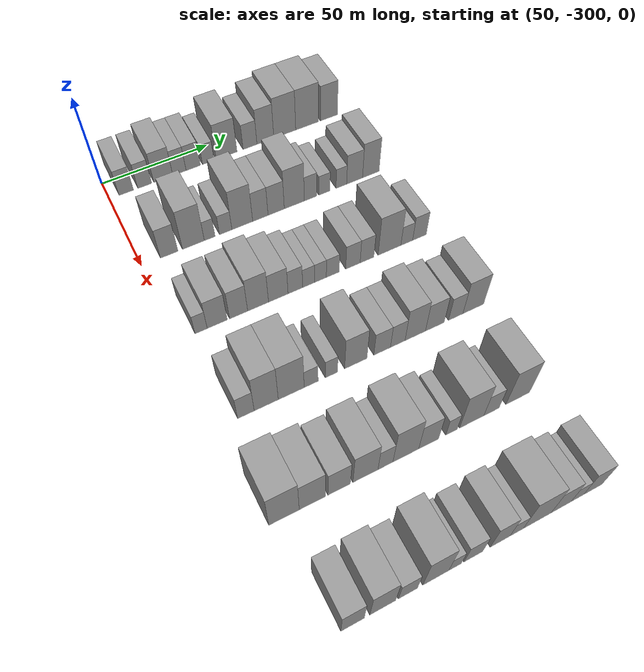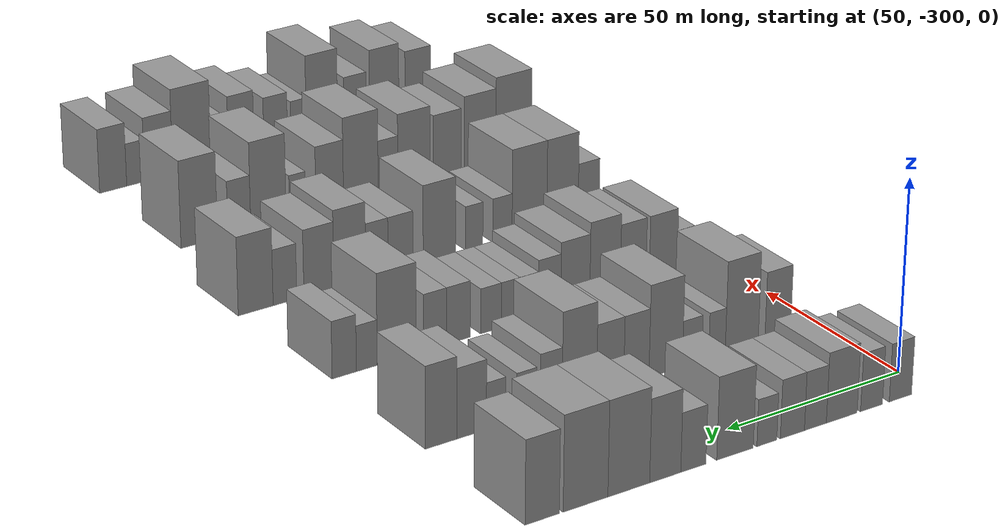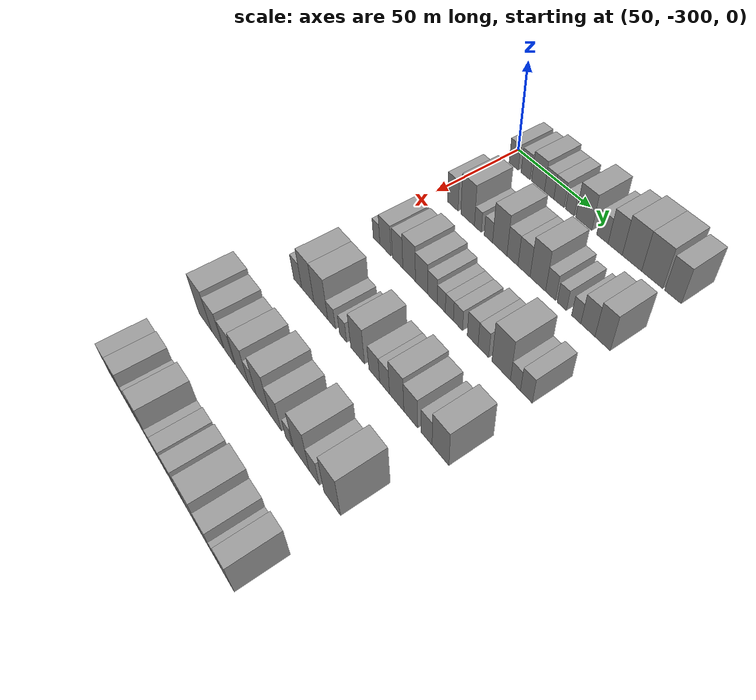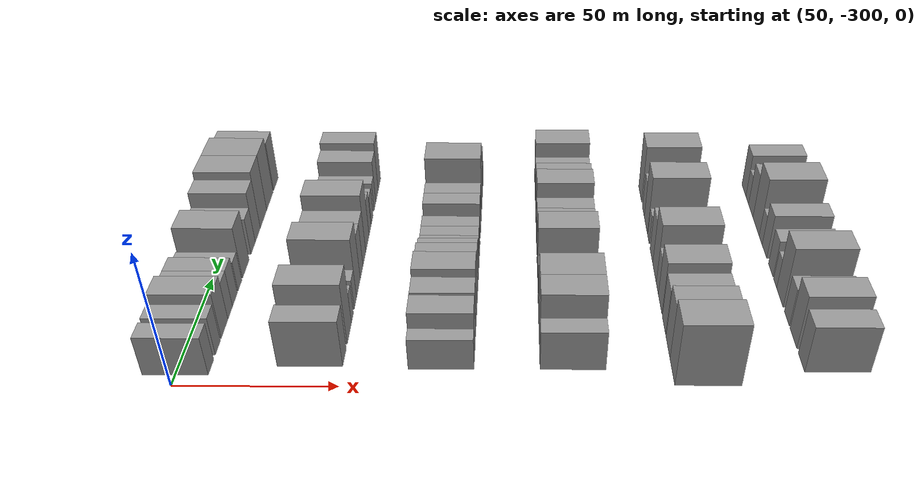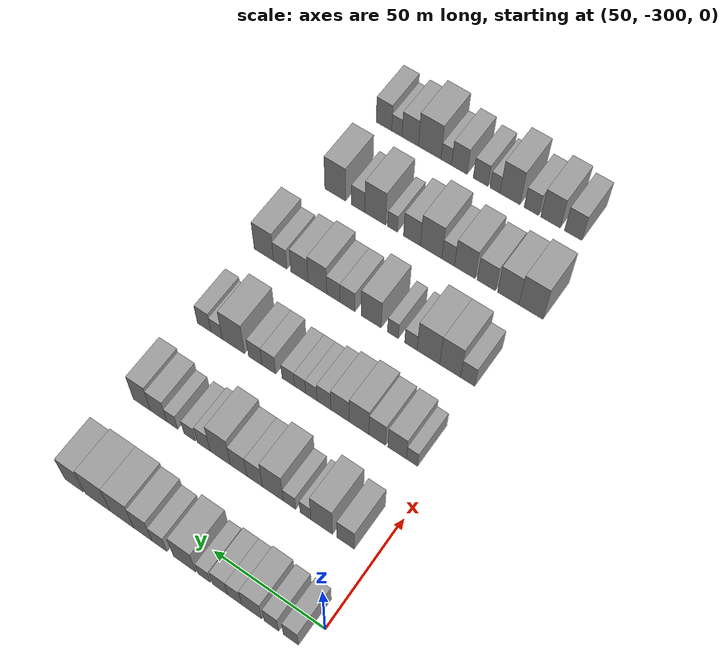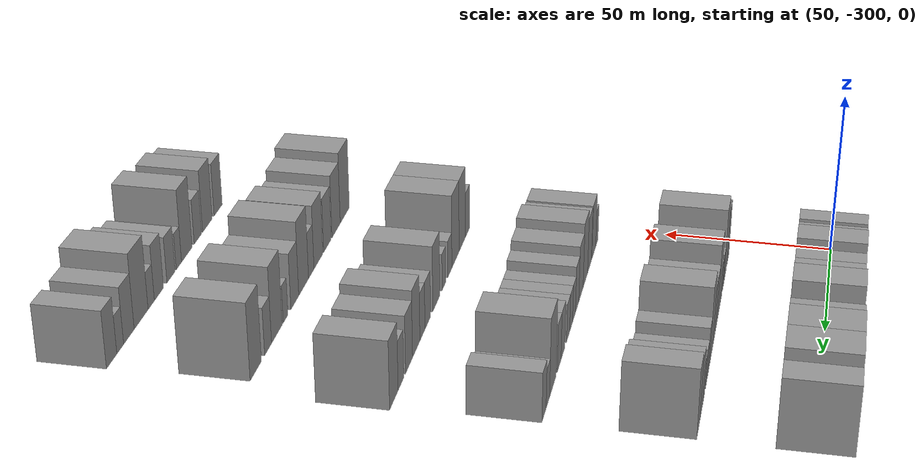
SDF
<sdf version="1.6">
 <world name="default">
  <model name="building_35">
   <static>1</static>
   <pose>50.0000 -292.2063 0 0.000000 0.000000 0.000000</pose>
   <link name="link">
    <pose>0 0 7.50 0 0 0</pose>
    <collision name="collision"><geometry><box><size>20.0000 6.6621 15.0000</size></box></geometry></collision>
    <visual name="visual">
     <cast_shadows>0</cast_shadows>
     <geometry><box><size>20.0000 6.6621 15.0000</size></box></geometry>
     <material>
      <script>
       <uri>model://grey_wall/materials/scripts</uri>
       <uri>model://grey_wall/materials/textures</uri>
       <name>vrc/grey_wall</name>
      </script>
     </material>
    </visual>
   </link>
  </model>
  <model name="building_36">
   <static>1</static>
   <pose>50.0000 -283.6438 0 0.000000 0.000000 0.000000</pose>
   <link name="link">
    <pose>0 0 7.50 0 0 0</pose>
    <collision name="collision"><geometry><box><size>20.0000 6.4631 15.0000</size></box></geometry></collision>
    <visual name="visual">
     <cast_shadows>0</cast_shadows>
     <geometry><box><size>20.0000 6.4631 15.0000</size></box></geometry>
     <material>
      <script>
       <uri>model://grey_wall/materials/scripts</uri>
       <uri>model://grey_wall/materials/textures</uri>
       <name>vrc/grey_wall</name>
      </script>
     </material>
    </visual>
   </link>
  </model>
  <model name="building_37">
   <static>1</static>
   <pose>50.0000 -274.9319 0 0.000000 0.000000 0.000000</pose>
   <link name="link">
    <pose>0 0 9.00 0 0 0</pose>
    <collision name="collision"><geometry><box><size>20.0000 8.9606 18.0000</size></box></geometry></collision>
    <visual name="visual">
     <cast_shadows>0</cast_shadows>
     <geometry><box><size>20.0000 8.9606 18.0000</size></box></geometry>
     <material>
      <script>
       <uri>model://grey_wall/materials/scripts</uri>
       <uri>model://grey_wall/materials/textures</uri>
       <name>vrc/grey_wall</name>
      </script>
     </material>
    </visual>
   </link>
  </model>
  <model name="building_38">
   <static>1</static>
   <pose>50.0000 -267.2856 0 0.000000 0.000000 0.000000</pose>
   <link name="link">
    <pose>0 0 7.50 0 0 0</pose>
    <collision name="collision"><geometry><box><size>20.0000 6.3320 15.0000</size></box></geometry></collision>
    <visual name="visual">
     <cast_shadows>0</cast_shadows>
     <geometry><box><size>20.0000 6.3320 15.0000</size></box></geometry>
     <material>
      <script>
       <uri>model://grey_wall/materials/scripts</uri>
       <uri>model://grey_wall/materials/textures</uri>
       <name>vrc/grey_wall</name>
      </script>
     </material>
    </visual>
   </link>
  </model>
  <model name="building_39">
   <static>1</static>
   <pose>50.0000 -260.6717 0 0.000000 0.000000 0.000000</pose>
   <link name="link">
    <pose>0 0 7.50 0 0 0</pose>
    <collision name="collision"><geometry><box><size>20.0000 6.8958 15.0000</size></box></geometry></collision>
    <visual name="visual">
     <cast_shadows>0</cast_shadows>
     <geometry><box><size>20.0000 6.8958 15.0000</size></box></geometry>
     <material>
      <script>
       <uri>model://grey_wall/materials/scripts</uri>
       <uri>model://grey_wall/materials/textures</uri>
       <name>vrc/grey_wall</name>
      </script>
     </material>
    </visual>
   </link>
  </model>
  <model name="building_40">
   <static>1</static>
   <pose>50.0000 -253.3867 0 0.000000 0.000000 0.000000</pose>
   <link name="link">
    <pose>0 0 6.00 0 0 0</pose>
    <collision name="collision"><geometry><box><size>20.0000 5.6743 12.0000</size></box></geometry></collision>
    <visual name="visual">
     <cast_shadows>0</cast_shadows>
     <geometry><box><size>20.0000 5.6743 12.0000</size></box></geometry>
     <material>
      <script>
       <uri>model://grey_wall/materials/scripts</uri>
       <uri>model://grey_wall/materials/textures</uri>
       <name>vrc/grey_wall</name>
      </script>
     </material>
    </visual>
   </link>
  </model>
  <model name="building_41">
   <static>1</static>
   <pose>50.0000 -244.4120 0 0.000000 0.000000 0.000000</pose>
   <link name="link">
    <pose>0 0 10.50 0 0 0</pose>
    <collision name="collision"><geometry><box><size>20.0000 10.2751 21.0000</size></box></geometry></collision>
    <visual name="visual">
     <cast_shadows>0</cast_shadows>
     <geometry><box><size>20.0000 10.2751 21.0000</size></box></geometry>
     <material>
      <script>
       <uri>model://grey_wall/materials/scripts</uri>
       <uri>model://grey_wall/materials/textures</uri>
       <name>vrc/grey_wall</name>
      </script>
     </material>
    </visual>
   </link>
  </model>
  <model name="building_42">
   <static>1</static>
   <pose>50.0000 -232.7941 0 0.000000 0.000000 0.000000</pose>
   <link name="link">
    <pose>0 0 7.50 0 0 0</pose>
    <collision name="collision"><geometry><box><size>20.0000 6.9606 15.0000</size></box></geometry></collision>
    <visual name="visual">
     <cast_shadows>0</cast_shadows>
     <geometry><box><size>20.0000 6.9606 15.0000</size></box></geometry>
     <material>
      <script>
       <uri>model://grey_wall/materials/scripts</uri>
       <uri>model://grey_wall/materials/textures</uri>
       <name>vrc/grey_wall</name>
      </script>
     </material>
    </visual>
   </link>
  </model>
  <model name="building_43">
   <static>1</static>
   <pose>50.0000 -225.0545 0 0.000000 0.000000 0.000000</pose>
   <link name="link">
    <pose>0 0 10.50 0 0 0</pose>
    <collision name="collision"><geometry><box><size>20.0000 8.5187 21.0000</size></box></geometry></collision>
    <visual name="visual">
     <cast_shadows>0</cast_shadows>
     <geometry><box><size>20.0000 8.5187 21.0000</size></box></geometry>
     <material>
      <script>
       <uri>model://grey_wall/materials/scripts</uri>
       <uri>model://grey_wall/materials/textures</uri>
       <name>vrc/grey_wall</name>
      </script>
     </material>
    </visual>
   </link>
  </model>
  <model name="building_44">
   <static>1</static>
   <pose>50.0000 -215.1509 0 0.000000 0.000000 0.000000</pose>
   <link name="link">
    <pose>0 0 12.00 0 0 0</pose>
    <collision name="collision"><geometry><box><size>20.0000 11.2883 24.0000</size></box></geometry></collision>
    <visual name="visual">
     <cast_shadows>0</cast_shadows>
     <geometry><box><size>20.0000 11.2883 24.0000</size></box></geometry>
     <material>
      <script>
       <uri>model://grey_wall/materials/scripts</uri>
       <uri>model://grey_wall/materials/textures</uri>
       <name>vrc/grey_wall</name>
      </script>
     </material>
    </visual>
   </link>
  </model>
  <model name="building_45">
   <static>1</static>
   <pose>50.0000 -203.5456 0 0.000000 0.000000 0.000000</pose>
   <link name="link">
    <pose>0 0 12.00 0 0 0</pose>
    <collision name="collision"><geometry><box><size>20.0000 11.9224 24.0000</size></box></geometry></collision>
    <visual name="visual">
     <cast_shadows>0</cast_shadows>
     <geometry><box><size>20.0000 11.9224 24.0000</size></box></geometry>
     <material>
      <script>
       <uri>model://grey_wall/materials/scripts</uri>
       <uri>model://grey_wall/materials/textures</uri>
       <name>vrc/grey_wall</name>
      </script>
     </material>
    </visual>
   </link>
  </model>
  <model name="building_46">
   <static>1</static>
   <pose>50.0000 -192.0829 0 0.000000 0.000000 0.000000</pose>
   <link name="link">
    <pose>0 0 10.50 0 0 0</pose>
    <collision name="collision"><geometry><box><size>20.0000 9.0031 21.0000</size></box></geometry></collision>
    <visual name="visual">
     <cast_shadows>0</cast_shadows>
     <geometry><box><size>20.0000 9.0031 21.0000</size></box></geometry>
     <material>
      <script>
       <uri>model://grey_wall/materials/scripts</uri>
       <uri>model://grey_wall/materials/textures</uri>
       <name>vrc/grey_wall</name>
      </script>
     </material>
    </visual>
   </link>
  </model>
  <model name="building_175">
   <static>1</static>
   <pose>90.0000 -287.7151 0 0.000000 0.000000 0.000000</pose>
   <link name="link">
    <pose>0 0 9.00 0 0 0</pose>
    <collision name="collision"><geometry><box><size>20.0000 7.7472 18.0000</size></box></geometry></collision>
    <visual name="visual">
     <cast_shadows>0</cast_shadows>
     <geometry><box><size>20.0000 7.7472 18.0000</size></box></geometry>
     <material>
      <script>
       <uri>model://grey_wall/materials/scripts</uri>
       <uri>model://grey_wall/materials/textures</uri>
       <name>vrc/grey_wall</name>
      </script>
     </material>
    </visual>
   </link>
  </model>
  <model name="building_176">
   <static>1</static>
   <pose>90.0000 -276.9374 0 0.000000 0.000000 0.000000</pose>
   <link name="link">
    <pose>0 0 12.00 0 0 0</pose>
    <collision name="collision"><geometry><box><size>20.0000 9.8082 24.0000</size></box></geometry></collision>
    <visual name="visual">
     <cast_shadows>0</cast_shadows>
     <geometry><box><size>20.0000 9.8082 24.0000</size></box></geometry>
     <material>
      <script>
       <uri>model://grey_wall/materials/scripts</uri>
       <uri>model://grey_wall/materials/textures</uri>
       <name>vrc/grey_wall</name>
      </script>
     </material>
    </visual>
   </link>
  </model>
  <model name="building_177">
   <static>1</static>
   <pose>90.0000 -269.5954 0 0.000000 0.000000 0.000000</pose>
   <link name="link">
    <pose>0 0 6.00 0 0 0</pose>
    <collision name="collision"><geometry><box><size>20.0000 4.8759 12.0000</size></box></geometry></collision>
    <visual name="visual">
     <cast_shadows>0</cast_shadows>
     <geometry><box><size>20.0000 4.8759 12.0000</size></box></geometry>
     <material>
      <script>
       <uri>model://grey_wall/materials/scripts</uri>
       <uri>model://grey_wall/materials/textures</uri>
       <name>vrc/grey_wall</name>
      </script>
     </material>
    </visual>
   </link>
  </model>
  <model name="building_178">
   <static>1</static>
   <pose>90.0000 -262.3043 0 0.000000 0.000000 0.000000</pose>
   <link name="link">
    <pose>0 0 6.00 0 0 0</pose>
    <collision name="collision"><geometry><box><size>20.0000 5.7062 12.0000</size></box></geometry></collision>
    <visual name="visual">
     <cast_shadows>0</cast_shadows>
     <geometry><box><size>20.0000 5.7062 12.0000</size></box></geometry>
     <material>
      <script>
       <uri>model://grey_wall/materials/scripts</uri>
       <uri>model://grey_wall/materials/textures</uri>
       <name>vrc/grey_wall</name>
      </script>
     </material>
    </visual>
   </link>
  </model>
  <model name="building_179">
   <static>1</static>
   <pose>90.0000 -254.6218 0 0.000000 0.000000 0.000000</pose>
   <link name="link">
    <pose>0 0 12.00 0 0 0</pose>
    <collision name="collision"><geometry><box><size>20.0000 9.6590 24.0000</size></box></geometry></collision>
    <visual name="visual">
     <cast_shadows>0</cast_shadows>
     <geometry><box><size>20.0000 9.6590 24.0000</size></box></geometry>
     <material>
      <script>
       <uri>model://grey_wall/materials/scripts</uri>
       <uri>model://grey_wall/materials/textures</uri>
       <name>vrc/grey_wall</name>
      </script>
     </material>
    </visual>
   </link>
  </model>
  <model name="building_180">
   <static>1</static>
   <pose>90.0000 -246.1780 0 0.000000 0.000000 0.000000</pose>
   <link name="link">
    <pose>0 0 9.00 0 0 0</pose>
    <collision name="collision"><geometry><box><size>20.0000 7.2286 18.0000</size></box></geometry></collision>
    <visual name="visual">
     <cast_shadows>0</cast_shadows>
     <geometry><box><size>20.0000 7.2286 18.0000</size></box></geometry>
     <material>
      <script>
       <uri>model://grey_wall/materials/scripts</uri>
       <uri>model://grey_wall/materials/textures</uri>
       <name>vrc/grey_wall</name>
      </script>
     </material>
    </visual>
   </link>
  </model>
  <model name="building_181">
   <static>1</static>
   <pose>90.0000 -238.7006 0 0.000000 0.000000 0.000000</pose>
   <link name="link">
    <pose>0 0 9.00 0 0 0</pose>
    <collision name="collision"><geometry><box><size>20.0000 7.7262 18.0000</size></box></geometry></collision>
    <visual name="visual">
     <cast_shadows>0</cast_shadows>
     <geometry><box><size>20.0000 7.7262 18.0000</size></box></geometry>
     <material>
      <script>
       <uri>model://grey_wall/materials/scripts</uri>
       <uri>model://grey_wall/materials/textures</uri>
       <name>vrc/grey_wall</name>
      </script>
     </material>
    </visual>
   </link>
  </model>
  <model name="building_182">
   <static>1</static>
   <pose>90.0000 -230.0001 0 0.000000 0.000000 0.000000</pose>
   <link name="link">
    <pose>0 0 12.00 0 0 0</pose>
    <collision name="collision"><geometry><box><size>20.0000 9.6747 24.0000</size></box></geometry></collision>
    <visual name="visual">
     <cast_shadows>0</cast_shadows>
     <geometry><box><size>20.0000 9.6747 24.0000</size></box></geometry>
     <material>
      <script>
       <uri>model://grey_wall/materials/scripts</uri>
       <uri>model://grey_wall/materials/textures</uri>
       <name>vrc/grey_wall</name>
      </script>
     </material>
    </visual>
   </link>
  </model>
  <model name="building_183">
   <static>1</static>
   <pose>90.0000 -222.1263 0 0.000000 0.000000 0.000000</pose>
   <link name="link">
    <pose>0 0 7.50 0 0 0</pose>
    <collision name="collision"><geometry><box><size>20.0000 6.0730 15.0000</size></box></geometry></collision>
    <visual name="visual">
     <cast_shadows>0</cast_shadows>
     <geometry><box><size>20.0000 6.0730 15.0000</size></box></geometry>
     <material>
      <script>
       <uri>model://grey_wall/materials/scripts</uri>
       <uri>model://grey_wall/materials/textures</uri>
       <name>vrc/grey_wall</name>
      </script>
     </material>
    </visual>
   </link>
  </model>
  <model name="building_184">
   <static>1</static>
   <pose>90.0000 -215.3403 0 0.000000 0.000000 0.000000</pose>
   <link name="link">
    <pose>0 0 6.00 0 0 0</pose>
    <collision name="collision"><geometry><box><size>20.0000 5.4990 12.0000</size></box></geometry></collision>
    <visual name="visual">
     <cast_shadows>0</cast_shadows>
     <geometry><box><size>20.0000 5.4990 12.0000</size></box></geometry>
     <material>
      <script>
       <uri>model://grey_wall/materials/scripts</uri>
       <uri>model://grey_wall/materials/textures</uri>
       <name>vrc/grey_wall</name>
      </script>
     </material>
    </visual>
   </link>
  </model>
  <model name="building_185">
   <static>1</static>
   <pose>90.0000 -206.9477 0 0.000000 0.000000 0.000000</pose>
   <link name="link">
    <pose>0 0 6.00 0 0 0</pose>
    <collision name="collision"><geometry><box><size>20.0000 5.2861 12.0000</size></box></geometry></collision>
    <visual name="visual">
     <cast_shadows>0</cast_shadows>
     <geometry><box><size>20.0000 5.2861 12.0000</size></box></geometry>
     <material>
      <script>
       <uri>model://grey_wall/materials/scripts</uri>
       <uri>model://grey_wall/materials/textures</uri>
       <name>vrc/grey_wall</name>
      </script>
     </material>
    </visual>
   </link>
  </model>
  <model name="building_186">
   <static>1</static>
   <pose>90.0000 -200.3060 0 0.000000 0.000000 0.000000</pose>
   <link name="link">
    <pose>0 0 9.00 0 0 0</pose>
    <collision name="collision"><geometry><box><size>20.0000 7.9973 18.0000</size></box></geometry></collision>
    <visual name="visual">
     <cast_shadows>0</cast_shadows>
     <geometry><box><size>20.0000 7.9973 18.0000</size></box></geometry>
     <material>
      <script>
       <uri>model://grey_wall/materials/scripts</uri>
       <uri>model://grey_wall/materials/textures</uri>
       <name>vrc/grey_wall</name>
      </script>
     </material>
    </visual>
   </link>
  </model>
  <model name="building_187">
   <static>1</static>
   <pose>90.0000 -192.0844 0 0.000000 0.000000 0.000000</pose>
   <link name="link">
    <pose>0 0 10.50 0 0 0</pose>
    <collision name="collision"><geometry><box><size>20.0000 8.4459 21.0000</size></box></geometry></collision>
    <visual name="visual">
     <cast_shadows>0</cast_shadows>
     <geometry><box><size>20.0000 8.4459 21.0000</size></box></geometry>
     <material>
      <script>
       <uri>model://grey_wall/materials/scripts</uri>
       <uri>model://grey_wall/materials/textures</uri>
       <name>vrc/grey_wall</name>
      </script>
     </material>
    </visual>
   </link>
  </model>
  <model name="building_310">
   <static>1</static>
   <pose>130.0000 -290.0929 0 0.000000 0.000000 0.000000</pose>
   <link name="link">
    <pose>0 0 6.00 0 0 0</pose>
    <collision name="collision"><geometry><box><size>20.0000 5.1057 12.0000</size></box></geometry></collision>
    <visual name="visual">
     <cast_shadows>0</cast_shadows>
     <geometry><box><size>20.0000 5.1057 12.0000</size></box></geometry>
     <material>
      <script>
       <uri>model://grey_wall/materials/scripts</uri>
       <uri>model://grey_wall/materials/textures</uri>
       <name>vrc/grey_wall</name>
      </script>
     </material>
    </visual>
   </link>
  </model>
  <model name="building_311">
   <static>1</static>
   <pose>130.0000 -283.2966 0 0.000000 0.000000 0.000000</pose>
   <link name="link">
    <pose>0 0 9.00 0 0 0</pose>
    <collision name="collision"><geometry><box><size>20.0000 8.4870 18.0000</size></box></geometry></collision>
    <visual name="visual">
     <cast_shadows>0</cast_shadows>
     <geometry><box><size>20.0000 8.4870 18.0000</size></box></geometry>
     <material>
      <script>
       <uri>model://grey_wall/materials/scripts</uri>
       <uri>model://grey_wall/materials/textures</uri>
       <name>vrc/grey_wall</name>
      </script>
     </material>
    </visual>
   </link>
  </model>
  <model name="building_312">
   <static>1</static>
   <pose>130.0000 -274.1834 0 0.000000 0.000000 0.000000</pose>
   <link name="link">
    <pose>0 0 9.00 0 0 0</pose>
    <collision name="collision"><geometry><box><size>20.0000 7.7394 18.0000</size></box></geometry></collision>
    <visual name="visual">
     <cast_shadows>0</cast_shadows>
     <geometry><box><size>20.0000 7.7394 18.0000</size></box></geometry>
     <material>
      <script>
       <uri>model://grey_wall/materials/scripts</uri>
       <uri>model://grey_wall/materials/textures</uri>
       <name>vrc/grey_wall</name>
      </script>
     </material>
    </visual>
   </link>
  </model>
  <model name="building_313">
   <static>1</static>
   <pose>130.0000 -265.7691 0 0.000000 0.000000 0.000000</pose>
   <link name="link">
    <pose>0 0 10.50 0 0 0</pose>
    <collision name="collision"><geometry><box><size>20.0000 9.0893 21.0000</size></box></geometry></collision>
    <visual name="visual">
     <cast_shadows>0</cast_shadows>
     <geometry><box><size>20.0000 9.0893 21.0000</size></box></geometry>
     <material>
      <script>
       <uri>model://grey_wall/materials/scripts</uri>
       <uri>model://grey_wall/materials/textures</uri>
       <name>vrc/grey_wall</name>
      </script>
     </material>
    </visual>
   </link>
  </model>
  <model name="building_314">
   <static>1</static>
   <pose>130.0000 -256.9233 0 0.000000 0.000000 0.000000</pose>
   <link name="link">
    <pose>0 0 9.00 0 0 0</pose>
    <collision name="collision"><geometry><box><size>20.0000 8.6022 18.0000</size></box></geometry></collision>
    <visual name="visual">
     <cast_shadows>0</cast_shadows>
     <geometry><box><size>20.0000 8.6022 18.0000</size></box></geometry>
     <material>
      <script>
       <uri>model://grey_wall/materials/scripts</uri>
       <uri>model://grey_wall/materials/textures</uri>
       <name>vrc/grey_wall</name>
      </script>
     </material>
    </visual>
   </link>
  </model>
  <model name="building_315">
   <static>1</static>
   <pose>130.0000 -249.3582 0 0.000000 0.000000 0.000000</pose>
   <link name="link">
    <pose>0 0 7.50 0 0 0</pose>
    <collision name="collision"><geometry><box><size>20.0000 6.5279 15.0000</size></box></geometry></collision>
    <visual name="visual">
     <cast_shadows>0</cast_shadows>
     <geometry><box><size>20.0000 6.5279 15.0000</size></box></geometry>
     <material>
      <script>
       <uri>model://grey_wall/materials/scripts</uri>
       <uri>model://grey_wall/materials/textures</uri>
       <name>vrc/grey_wall</name>
      </script>
     </material>
    </visual>
   </link>
  </model>
  <model name="building_316">
   <static>1</static>
   <pose>130.0000 -243.3847 0 0.000000 0.000000 0.000000</pose>
   <link name="link">
    <pose>0 0 6.00 0 0 0</pose>
    <collision name="collision"><geometry><box><size>20.0000 5.4192 12.0000</size></box></geometry></collision>
    <visual name="visual">
     <cast_shadows>0</cast_shadows>
     <geometry><box><size>20.0000 5.4192 12.0000</size></box></geometry>
     <material>
      <script>
       <uri>model://grey_wall/materials/scripts</uri>
       <uri>model://grey_wall/materials/textures</uri>
       <name>vrc/grey_wall</name>
      </script>
     </material>
    </visual>
   </link>
  </model>
  <model name="building_317">
   <static>1</static>
   <pose>130.0000 -238.0210 0 0.000000 0.000000 0.000000</pose>
   <link name="link">
    <pose>0 0 6.00 0 0 0</pose>
    <collision name="collision"><geometry><box><size>20.0000 5.3082 12.0000</size></box></geometry></collision>
    <visual name="visual">
     <cast_shadows>0</cast_shadows>
     <geometry><box><size>20.0000 5.3082 12.0000</size></box></geometry>
     <material>
      <script>
       <uri>model://grey_wall/materials/scripts</uri>
       <uri>model://grey_wall/materials/textures</uri>
       <name>vrc/grey_wall</name>
      </script>
     </material>
    </visual>
   </link>
  </model>
  <model name="building_318">
   <static>1</static>
   <pose>130.0000 -232.3987 0 0.000000 0.000000 0.000000</pose>
   <link name="link">
    <pose>0 0 6.00 0 0 0</pose>
    <collision name="collision"><geometry><box><size>20.0000 5.9364 12.0000</size></box></geometry></collision>
    <visual name="visual">
     <cast_shadows>0</cast_shadows>
     <geometry><box><size>20.0000 5.9364 12.0000</size></box></geometry>
     <material>
      <script>
       <uri>model://grey_wall/materials/scripts</uri>
       <uri>model://grey_wall/materials/textures</uri>
       <name>vrc/grey_wall</name>
      </script>
     </material>
    </visual>
   </link>
  </model>
  <model name="building_319">
   <static>1</static>
   <pose>130.0000 -223.0644 0 0.000000 0.000000 0.000000</pose>
   <link name="link">
    <pose>0 0 7.50 0 0 0</pose>
    <collision name="collision"><geometry><box><size>20.0000 6.7323 15.0000</size></box></geometry></collision>
    <visual name="visual">
     <cast_shadows>0</cast_shadows>
     <geometry><box><size>20.0000 6.7323 15.0000</size></box></geometry>
     <material>
      <script>
       <uri>model://grey_wall/materials/scripts</uri>
       <uri>model://grey_wall/materials/textures</uri>
       <name>vrc/grey_wall</name>
      </script>
     </material>
    </visual>
   </link>
  </model>
  <model name="building_320">
   <static>1</static>
   <pose>130.0000 -216.4493 0 0.000000 0.000000 0.000000</pose>
   <link name="link">
    <pose>0 0 7.50 0 0 0</pose>
    <collision name="collision"><geometry><box><size>20.0000 6.4980 15.0000</size></box></geometry></collision>
    <visual name="visual">
     <cast_shadows>0</cast_shadows>
     <geometry><box><size>20.0000 6.4980 15.0000</size></box></geometry>
     <material>
      <script>
       <uri>model://grey_wall/materials/scripts</uri>
       <uri>model://grey_wall/materials/textures</uri>
       <name>vrc/grey_wall</name>
      </script>
     </material>
    </visual>
   </link>
  </model>
  <model name="building_321">
   <static>1</static>
   <pose>130.0000 -205.7435 0 0.000000 0.000000 0.000000</pose>
   <link name="link">
    <pose>0 0 12.00 0 0 0</pose>
    <collision name="collision"><geometry><box><size>20.0000 10.9136 24.0000</size></box></geometry></collision>
    <visual name="visual">
     <cast_shadows>0</cast_shadows>
     <geometry><box><size>20.0000 10.9136 24.0000</size></box></geometry>
     <material>
      <script>
       <uri>model://grey_wall/materials/scripts</uri>
       <uri>model://grey_wall/materials/textures</uri>
       <name>vrc/grey_wall</name>
      </script>
     </material>
    </visual>
   </link>
  </model>
  <model name="building_322">
   <static>1</static>
   <pose>130.0000 -197.4213 0 0.000000 0.000000 0.000000</pose>
   <link name="link">
    <pose>0 0 6.00 0 0 0</pose>
    <collision name="collision"><geometry><box><size>20.0000 5.7308 12.0000</size></box></geometry></collision>
    <visual name="visual">
     <cast_shadows>0</cast_shadows>
     <geometry><box><size>20.0000 5.7308 12.0000</size></box></geometry>
     <material>
      <script>
       <uri>model://grey_wall/materials/scripts</uri>
       <uri>model://grey_wall/materials/textures</uri>
       <name>vrc/grey_wall</name>
      </script>
     </material>
    </visual>
   </link>
  </model>
  <model name="building_323">
   <static>1</static>
   <pose>130.0000 -191.2221 0 0.000000 0.000000 0.000000</pose>
   <link name="link">
    <pose>0 0 7.50 0 0 0</pose>
    <collision name="collision"><geometry><box><size>20.0000 6.6677 15.0000</size></box></geometry></collision>
    <visual name="visual">
     <cast_shadows>0</cast_shadows>
     <geometry><box><size>20.0000 6.6677 15.0000</size></box></geometry>
     <material>
      <script>
       <uri>model://grey_wall/materials/scripts</uri>
       <uri>model://grey_wall/materials/textures</uri>
       <name>vrc/grey_wall</name>
      </script>
     </material>
    </visual>
   </link>
  </model>
  <model name="building_449">
   <static>1</static>
   <pose>170.0000 -289.1761 0 0.000000 0.000000 0.000000</pose>
   <link name="link">
    <pose>0 0 7.50 0 0 0</pose>
    <collision name="collision"><geometry><box><size>20.0000 6.5877 15.0000</size></box></geometry></collision>
    <visual name="visual">
     <cast_shadows>0</cast_shadows>
     <geometry><box><size>20.0000 6.5877 15.0000</size></box></geometry>
     <material>
      <script>
       <uri>model://grey_wall/materials/scripts</uri>
       <uri>model://grey_wall/materials/textures</uri>
       <name>vrc/grey_wall</name>
      </script>
     </material>
    </visual>
   </link>
  </model>
  <model name="building_450">
   <static>1</static>
   <pose>170.0000 -281.0323 0 0.000000 0.000000 0.000000</pose>
   <link name="link">
    <pose>0 0 12.00 0 0 0</pose>
    <collision name="collision"><geometry><box><size>20.0000 9.7000 24.0000</size></box></geometry></collision>
    <visual name="visual">
     <cast_shadows>0</cast_shadows>
     <geometry><box><size>20.0000 9.7000 24.0000</size></box></geometry>
     <material>
      <script>
       <uri>model://grey_wall/materials/scripts</uri>
       <uri>model://grey_wall/materials/textures</uri>
       <name>vrc/grey_wall</name>
      </script>
     </material>
    </visual>
   </link>
  </model>
  <model name="building_451">
   <static>1</static>
   <pose>170.0000 -270.8742 0 0.000000 0.000000 0.000000</pose>
   <link name="link">
    <pose>0 0 12.00 0 0 0</pose>
    <collision name="collision"><geometry><box><size>20.0000 10.6162 24.0000</size></box></geometry></collision>
    <visual name="visual">
     <cast_shadows>0</cast_shadows>
     <geometry><box><size>20.0000 10.6162 24.0000</size></box></geometry>
     <material>
      <script>
       <uri>model://grey_wall/materials/scripts</uri>
       <uri>model://grey_wall/materials/textures</uri>
       <name>vrc/grey_wall</name>
      </script>
     </material>
    </visual>
   </link>
  </model>
  <model name="building_452">
   <static>1</static>
   <pose>170.0000 -262.6526 0 0.000000 0.000000 0.000000</pose>
   <link name="link">
    <pose>0 0 6.00 0 0 0</pose>
    <collision name="collision"><geometry><box><size>20.0000 5.8271 12.0000</size></box></geometry></collision>
    <visual name="visual">
     <cast_shadows>0</cast_shadows>
     <geometry><box><size>20.0000 5.8271 12.0000</size></box></geometry>
     <material>
      <script>
       <uri>model://grey_wall/materials/scripts</uri>
       <uri>model://grey_wall/materials/textures</uri>
       <name>vrc/grey_wall</name>
      </script>
     </material>
    </visual>
   </link>
  </model>
  <model name="building_453">
   <static>1</static>
   <pose>170.0000 -254.1486 0 0.000000 0.000000 0.000000</pose>
   <link name="link">
    <pose>0 0 6.00 0 0 0</pose>
    <collision name="collision"><geometry><box><size>20.0000 5.1808 12.0000</size></box></geometry></collision>
    <visual name="visual">
     <cast_shadows>0</cast_shadows>
     <geometry><box><size>20.0000 5.1808 12.0000</size></box></geometry>
     <material>
      <script>
       <uri>model://grey_wall/materials/scripts</uri>
       <uri>model://grey_wall/materials/textures</uri>
       <name>vrc/grey_wall</name>
      </script>
     </material>
    </visual>
   </link>
  </model>
  <model name="building_454">
   <static>1</static>
   <pose>170.0000 -243.7498 0 0.000000 0.000000 0.000000</pose>
   <link name="link">
    <pose>0 0 10.50 0 0 0</pose>
    <collision name="collision"><geometry><box><size>20.0000 9.6168 21.0000</size></box></geometry></collision>
    <visual name="visual">
     <cast_shadows>0</cast_shadows>
     <geometry><box><size>20.0000 9.6168 21.0000</size></box></geometry>
     <material>
      <script>
       <uri>model://grey_wall/materials/scripts</uri>
       <uri>model://grey_wall/materials/textures</uri>
       <name>vrc/grey_wall</name>
      </script>
     </material>
    </visual>
   </link>
  </model>
  <model name="building_455">
   <static>1</static>
   <pose>170.0000 -232.2958 0 0.000000 0.000000 0.000000</pose>
   <link name="link">
    <pose>0 0 7.50 0 0 0</pose>
    <collision name="collision"><geometry><box><size>20.0000 7.2913 15.0000</size></box></geometry></collision>
    <visual name="visual">
     <cast_shadows>0</cast_shadows>
     <geometry><box><size>20.0000 7.2913 15.0000</size></box></geometry>
     <material>
      <script>
       <uri>model://grey_wall/materials/scripts</uri>
       <uri>model://grey_wall/materials/textures</uri>
       <name>vrc/grey_wall</name>
      </script>
     </material>
    </visual>
   </link>
  </model>
  <model name="building_456">
   <static>1</static>
   <pose>170.0000 -225.3969 0 0.000000 0.000000 0.000000</pose>
   <link name="link">
    <pose>0 0 7.50 0 0 0</pose>
    <collision name="collision"><geometry><box><size>20.0000 6.5066 15.0000</size></box></geometry></collision>
    <visual name="visual">
     <cast_shadows>0</cast_shadows>
     <geometry><box><size>20.0000 6.5066 15.0000</size></box></geometry>
     <material>
      <script>
       <uri>model://grey_wall/materials/scripts</uri>
       <uri>model://grey_wall/materials/textures</uri>
       <name>vrc/grey_wall</name>
      </script>
     </material>
    </visual>
   </link>
  </model>
  <model name="building_457">
   <static>1</static>
   <pose>170.0000 -217.5515 0 0.000000 0.000000 0.000000</pose>
   <link name="link">
    <pose>0 0 10.50 0 0 0</pose>
    <collision name="collision"><geometry><box><size>20.0000 9.1840 21.0000</size></box></geometry></collision>
    <visual name="visual">
     <cast_shadows>0</cast_shadows>
     <geometry><box><size>20.0000 9.1840 21.0000</size></box></geometry>
     <material>
      <script>
       <uri>model://grey_wall/materials/scripts</uri>
       <uri>model://grey_wall/materials/textures</uri>
       <name>vrc/grey_wall</name>
      </script>
     </material>
    </visual>
   </link>
  </model>
  <model name="building_458">
   <static>1</static>
   <pose>170.0000 -208.6763 0 0.000000 0.000000 0.000000</pose>
   <link name="link">
    <pose>0 0 9.00 0 0 0</pose>
    <collision name="collision"><geometry><box><size>20.0000 8.5664 18.0000</size></box></geometry></collision>
    <visual name="visual">
     <cast_shadows>0</cast_shadows>
     <geometry><box><size>20.0000 8.5664 18.0000</size></box></geometry>
     <material>
      <script>
       <uri>model://grey_wall/materials/scripts</uri>
       <uri>model://grey_wall/materials/textures</uri>
       <name>vrc/grey_wall</name>
      </script>
     </material>
    </visual>
   </link>
  </model>
  <model name="building_459">
   <static>1</static>
   <pose>170.0000 -199.0518 0 0.000000 0.000000 0.000000</pose>
   <link name="link">
    <pose>0 0 7.50 0 0 0</pose>
    <collision name="collision"><geometry><box><size>20.0000 6.6826 15.0000</size></box></geometry></collision>
    <visual name="visual">
     <cast_shadows>0</cast_shadows>
     <geometry><box><size>20.0000 6.6826 15.0000</size></box></geometry>
     <material>
      <script>
       <uri>model://grey_wall/materials/scripts</uri>
       <uri>model://grey_wall/materials/textures</uri>
       <name>vrc/grey_wall</name>
      </script>
     </material>
    </visual>
   </link>
  </model>
  <model name="building_460">
   <static>1</static>
   <pose>170.0000 -190.8267 0 0.000000 0.000000 0.000000</pose>
   <link name="link">
    <pose>0 0 10.50 0 0 0</pose>
    <collision name="collision"><geometry><box><size>20.0000 9.7676 21.0000</size></box></geometry></collision>
    <visual name="visual">
     <cast_shadows>0</cast_shadows>
     <geometry><box><size>20.0000 9.7676 21.0000</size></box></geometry>
     <material>
      <script>
       <uri>model://grey_wall/materials/scripts</uri>
       <uri>model://grey_wall/materials/textures</uri>
       <name>vrc/grey_wall</name>
      </script>
     </material>
    </visual>
   </link>
  </model>
  <model name="building_582">
   <static>1</static>
   <pose>210.0000 -293.2585 0 0.000000 0.000000 0.000000</pose>
   <link name="link">
    <pose>0 0 12.00 0 0 0</pose>
    <collision name="collision"><geometry><box><size>20.0000 11.3594 24.0000</size></box></geometry></collision>
    <visual name="visual">
     <cast_shadows>0</cast_shadows>
     <geometry><box><size>20.0000 11.3594 24.0000</size></box></geometry>
     <material>
      <script>
       <uri>model://grey_wall/materials/scripts</uri>
       <uri>model://grey_wall/materials/textures</uri>
       <name>vrc/grey_wall</name>
      </script>
     </material>
    </visual>
   </link>
  </model>
  <model name="building_583">
   <static>1</static>
   <pose>210.0000 -282.6014 0 0.000000 0.000000 0.000000</pose>
   <link name="link">
    <pose>0 0 10.50 0 0 0</pose>
    <collision name="collision"><geometry><box><size>20.0000 9.9548 21.0000</size></box></geometry></collision>
    <visual name="visual">
     <cast_shadows>0</cast_shadows>
     <geometry><box><size>20.0000 9.9548 21.0000</size></box></geometry>
     <material>
      <script>
       <uri>model://grey_wall/materials/scripts</uri>
       <uri>model://grey_wall/materials/textures</uri>
       <name>vrc/grey_wall</name>
      </script>
     </material>
    </visual>
   </link>
  </model>
  <model name="building_584">
   <static>1</static>
   <pose>210.0000 -272.2710 0 0.000000 0.000000 0.000000</pose>
   <link name="link">
    <pose>0 0 9.00 0 0 0</pose>
    <collision name="collision"><geometry><box><size>20.0000 8.7059 18.0000</size></box></geometry></collision>
    <visual name="visual">
     <cast_shadows>0</cast_shadows>
     <geometry><box><size>20.0000 8.7059 18.0000</size></box></geometry>
     <material>
      <script>
       <uri>model://grey_wall/materials/scripts</uri>
       <uri>model://grey_wall/materials/textures</uri>
       <name>vrc/grey_wall</name>
      </script>
     </material>
    </visual>
   </link>
  </model>
  <model name="building_585">
   <static>1</static>
   <pose>210.0000 -261.9564 0 0.000000 0.000000 0.000000</pose>
   <link name="link">
    <pose>0 0 10.50 0 0 0</pose>
    <collision name="collision"><geometry><box><size>20.0000 9.9232 21.0000</size></box></geometry></collision>
    <visual name="visual">
     <cast_shadows>0</cast_shadows>
     <geometry><box><size>20.0000 9.9232 21.0000</size></box></geometry>
     <material>
      <script>
       <uri>model://grey_wall/materials/scripts</uri>
       <uri>model://grey_wall/materials/textures</uri>
       <name>vrc/grey_wall</name>
      </script>
     </material>
    </visual>
   </link>
  </model>
  <model name="building_586">
   <static>1</static>
   <pose>210.0000 -253.9862 0 0.000000 0.000000 0.000000</pose>
   <link name="link">
    <pose>0 0 7.50 0 0 0</pose>
    <collision name="collision"><geometry><box><size>20.0000 6.0173 15.0000</size></box></geometry></collision>
    <visual name="visual">
     <cast_shadows>0</cast_shadows>
     <geometry><box><size>20.0000 6.0173 15.0000</size></box></geometry>
     <material>
      <script>
       <uri>model://grey_wall/materials/scripts</uri>
       <uri>model://grey_wall/materials/textures</uri>
       <name>vrc/grey_wall</name>
      </script>
     </material>
    </visual>
   </link>
  </model>
  <model name="building_587">
   <static>1</static>
   <pose>210.0000 -245.7087 0 0.000000 0.000000 0.000000</pose>
   <link name="link">
    <pose>0 0 12.00 0 0 0</pose>
    <collision name="collision"><geometry><box><size>20.0000 10.5378 24.0000</size></box></geometry></collision>
    <visual name="visual">
     <cast_shadows>0</cast_shadows>
     <geometry><box><size>20.0000 10.5378 24.0000</size></box></geometry>
     <material>
      <script>
       <uri>model://grey_wall/materials/scripts</uri>
       <uri>model://grey_wall/materials/textures</uri>
       <name>vrc/grey_wall</name>
      </script>
     </material>
    </visual>
   </link>
  </model>
  <model name="building_588">
   <static>1</static>
   <pose>210.0000 -236.2999 0 0.000000 0.000000 0.000000</pose>
   <link name="link">
    <pose>0 0 9.00 0 0 0</pose>
    <collision name="collision"><geometry><box><size>20.0000 8.2797 18.0000</size></box></geometry></collision>
    <visual name="visual">
     <cast_shadows>0</cast_shadows>
     <geometry><box><size>20.0000 8.2797 18.0000</size></box></geometry>
     <material>
      <script>
       <uri>model://grey_wall/materials/scripts</uri>
       <uri>model://grey_wall/materials/textures</uri>
       <name>vrc/grey_wall</name>
      </script>
     </material>
    </visual>
   </link>
  </model>
  <model name="building_589">
   <static>1</static>
   <pose>210.0000 -226.7359 0 0.000000 0.000000 0.000000</pose>
   <link name="link">
    <pose>0 0 6.00 0 0 0</pose>
    <collision name="collision"><geometry><box><size>20.0000 4.8484 12.0000</size></box></geometry></collision>
    <visual name="visual">
     <cast_shadows>0</cast_shadows>
     <geometry><box><size>20.0000 4.8484 12.0000</size></box></geometry>
     <material>
      <script>
       <uri>model://grey_wall/materials/scripts</uri>
       <uri>model://grey_wall/materials/textures</uri>
       <name>vrc/grey_wall</name>
      </script>
     </material>
    </visual>
   </link>
  </model>
  <model name="building_590">
   <static>1</static>
   <pose>210.0000 -218.0966 0 0.000000 0.000000 0.000000</pose>
   <link name="link">
    <pose>0 0 12.00 0 0 0</pose>
    <collision name="collision"><geometry><box><size>20.0000 10.4303 24.0000</size></box></geometry></collision>
    <visual name="visual">
     <cast_shadows>0</cast_shadows>
     <geometry><box><size>20.0000 10.4303 24.0000</size></box></geometry>
     <material>
      <script>
       <uri>model://grey_wall/materials/scripts</uri>
       <uri>model://grey_wall/materials/textures</uri>
       <name>vrc/grey_wall</name>
      </script>
     </material>
    </visual>
   </link>
  </model>
  <model name="building_591">
   <static>1</static>
   <pose>210.0000 -209.5448 0 0.000000 0.000000 0.000000</pose>
   <link name="link">
    <pose>0 0 7.50 0 0 0</pose>
    <collision name="collision"><geometry><box><size>20.0000 6.6734 15.0000</size></box></geometry></collision>
    <visual name="visual">
     <cast_shadows>0</cast_shadows>
     <geometry><box><size>20.0000 6.6734 15.0000</size></box></geometry>
     <material>
      <script>
       <uri>model://grey_wall/materials/scripts</uri>
       <uri>model://grey_wall/materials/textures</uri>
       <name>vrc/grey_wall</name>
      </script>
     </material>
    </visual>
   </link>
  </model>
  <model name="building_592">
   <static>1</static>
   <pose>210.0000 -197.9469 0 0.000000 0.000000 0.000000</pose>
   <link name="link">
    <pose>0 0 12.00 0 0 0</pose>
    <collision name="collision"><geometry><box><size>20.0000 10.5224 24.0000</size></box></geometry></collision>
    <visual name="visual">
     <cast_shadows>0</cast_shadows>
     <geometry><box><size>20.0000 10.5224 24.0000</size></box></geometry>
     <material>
      <script>
       <uri>model://grey_wall/materials/scripts</uri>
       <uri>model://grey_wall/materials/textures</uri>
       <name>vrc/grey_wall</name>
      </script>
     </material>
    </visual>
   </link>
  </model>
  <model name="building_728">
   <static>1</static>
   <pose>250.0000 -288.9342 0 0.000000 0.000000 0.000000</pose>
   <link name="link">
    <pose>0 0 9.00 0 0 0</pose>
    <collision name="collision"><geometry><box><size>20.0000 8.3035 18.0000</size></box></geometry></collision>
    <visual name="visual">
     <cast_shadows>0</cast_shadows>
     <geometry><box><size>20.0000 8.3035 18.0000</size></box></geometry>
     <material>
      <script>
       <uri>model://grey_wall/materials/scripts</uri>
       <uri>model://grey_wall/materials/textures</uri>
       <name>vrc/grey_wall</name>
      </script>
     </material>
    </visual>
   </link>
  </model>
  <model name="building_729">
   <static>1</static>
   <pose>250.0000 -278.0903 0 0.000000 0.000000 0.000000</pose>
   <link name="link">
    <pose>0 0 10.50 0 0 0</pose>
    <collision name="collision"><geometry><box><size>20.0000 9.3843 21.0000</size></box></geometry></collision>
    <visual name="visual">
     <cast_shadows>0</cast_shadows>
     <geometry><box><size>20.0000 9.3843 21.0000</size></box></geometry>
     <material>
      <script>
       <uri>model://grey_wall/materials/scripts</uri>
       <uri>model://grey_wall/materials/textures</uri>
       <name>vrc/grey_wall</name>
      </script>
     </material>
    </visual>
   </link>
  </model>
  <model name="building_730">
   <static>1</static>
   <pose>250.0000 -268.8616 0 0.000000 0.000000 0.000000</pose>
   <link name="link">
    <pose>0 0 7.50 0 0 0</pose>
    <collision name="collision"><geometry><box><size>20.0000 7.0730 15.0000</size></box></geometry></collision>
    <visual name="visual">
     <cast_shadows>0</cast_shadows>
     <geometry><box><size>20.0000 7.0730 15.0000</size></box></geometry>
     <material>
      <script>
       <uri>model://grey_wall/materials/scripts</uri>
       <uri>model://grey_wall/materials/textures</uri>
       <name>vrc/grey_wall</name>
      </script>
     </material>
    </visual>
   </link>
  </model>
  <model name="building_731">
   <static>1</static>
   <pose>250.0000 -258.4201 0 0.000000 0.000000 0.000000</pose>
   <link name="link">
    <pose>0 0 12.00 0 0 0</pose>
    <collision name="collision"><geometry><box><size>20.0000 9.8101 24.0000</size></box></geometry></collision>
    <visual name="visual">
     <cast_shadows>0</cast_shadows>
     <geometry><box><size>20.0000 9.8101 24.0000</size></box></geometry>
     <material>
      <script>
       <uri>model://grey_wall/materials/scripts</uri>
       <uri>model://grey_wall/materials/textures</uri>
       <name>vrc/grey_wall</name>
      </script>
     </material>
    </visual>
   </link>
  </model>
  <model name="building_732">
   <static>1</static>
   <pose>250.0000 -251.0908 0 0.000000 0.000000 0.000000</pose>
   <link name="link">
    <pose>0 0 6.00 0 0 0</pose>
    <collision name="collision"><geometry><box><size>20.0000 4.8484 12.0000</size></box></geometry></collision>
    <visual name="visual">
     <cast_shadows>0</cast_shadows>
     <geometry><box><size>20.0000 4.8484 12.0000</size></box></geometry>
     <material>
      <script>
       <uri>model://grey_wall/materials/scripts</uri>
       <uri>model://grey_wall/materials/textures</uri>
       <name>vrc/grey_wall</name>
      </script>
     </material>
    </visual>
   </link>
  </model>
  <model name="building_733">
   <static>1</static>
   <pose>250.0000 -244.0154 0 0.000000 0.000000 0.000000</pose>
   <link name="link">
    <pose>0 0 7.50 0 0 0</pose>
    <collision name="collision"><geometry><box><size>20.0000 7.3023 15.0000</size></box></geometry></collision>
    <visual name="visual">
     <cast_shadows>0</cast_shadows>
     <geometry><box><size>20.0000 7.3023 15.0000</size></box></geometry>
     <material>
      <script>
       <uri>model://grey_wall/materials/scripts</uri>
       <uri>model://grey_wall/materials/textures</uri>
       <name>vrc/grey_wall</name>
      </script>
     </material>
    </visual>
   </link>
  </model>
  <model name="building_734">
   <static>1</static>
   <pose>250.0000 -233.4467 0 0.000000 0.000000 0.000000</pose>
   <link name="link">
    <pose>0 0 9.00 0 0 0</pose>
    <collision name="collision"><geometry><box><size>20.0000 7.8350 18.0000</size></box></geometry></collision>
    <visual name="visual">
     <cast_shadows>0</cast_shadows>
     <geometry><box><size>20.0000 7.8350 18.0000</size></box></geometry>
     <material>
      <script>
       <uri>model://grey_wall/materials/scripts</uri>
       <uri>model://grey_wall/materials/textures</uri>
       <name>vrc/grey_wall</name>
      </script>
     </material>
    </visual>
   </link>
  </model>
  <model name="building_735">
   <static>1</static>
   <pose>250.0000 -226.8678 0 0.000000 0.000000 0.000000</pose>
   <link name="link">
    <pose>0 0 6.00 0 0 0</pose>
    <collision name="collision"><geometry><box><size>20.0000 5.3229 12.0000</size></box></geometry></collision>
    <visual name="visual">
     <cast_shadows>0</cast_shadows>
     <geometry><box><size>20.0000 5.3229 12.0000</size></box></geometry>
     <material>
      <script>
       <uri>model://grey_wall/materials/scripts</uri>
       <uri>model://grey_wall/materials/textures</uri>
       <name>vrc/grey_wall</name>
      </script>
     </material>
    </visual>
   </link>
  </model>
  <model name="building_736">
   <static>1</static>
   <pose>250.0000 -218.4795 0 0.000000 0.000000 0.000000</pose>
   <link name="link">
    <pose>0 0 12.00 0 0 0</pose>
    <collision name="collision"><geometry><box><size>20.0000 11.4536 24.0000</size></box></geometry></collision>
    <visual name="visual">
     <cast_shadows>0</cast_shadows>
     <geometry><box><size>20.0000 11.4536 24.0000</size></box></geometry>
     <material>
      <script>
       <uri>model://grey_wall/materials/scripts</uri>
       <uri>model://grey_wall/materials/textures</uri>
       <name>vrc/grey_wall</name>
      </script>
     </material>
    </visual>
   </link>
  </model>
  <model name="building_737">
   <static>1</static>
   <pose>250.0000 -208.5644 0 0.000000 0.000000 0.000000</pose>
   <link name="link">
    <pose>0 0 9.00 0 0 0</pose>
    <collision name="collision"><geometry><box><size>20.0000 8.3767 18.0000</size></box></geometry></collision>
    <visual name="visual">
     <cast_shadows>0</cast_shadows>
     <geometry><box><size>20.0000 8.3767 18.0000</size></box></geometry>
     <material>
      <script>
       <uri>model://grey_wall/materials/scripts</uri>
       <uri>model://grey_wall/materials/textures</uri>
       <name>vrc/grey_wall</name>
      </script>
     </material>
    </visual>
   </link>
  </model>
  <model name="building_738">
   <static>1</static>
   <pose>250.0000 -201.7191 0 0.000000 0.000000 0.000000</pose>
   <link name="link">
    <pose>0 0 6.00 0 0 0</pose>
    <collision name="collision"><geometry><box><size>20.0000 5.3139 12.0000</size></box></geometry></collision>
    <visual name="visual">
     <cast_shadows>0</cast_shadows>
     <geometry><box><size>20.0000 5.3139 12.0000</size></box></geometry>
     <material>
      <script>
       <uri>model://grey_wall/materials/scripts</uri>
       <uri>model://grey_wall/materials/textures</uri>
       <name>vrc/grey_wall</name>
      </script>
     </material>
    </visual>
   </link>
  </model>
  <model name="building_739">
   <static>1</static>
   <pose>250.0000 -195.0857 0 0.000000 0.000000 0.000000</pose>
   <link name="link">
    <pose>0 0 9.00 0 0 0</pose>
    <collision name="collision"><geometry><box><size>20.0000 7.9527 18.0000</size></box></geometry></collision>
    <visual name="visual">
     <cast_shadows>0</cast_shadows>
     <geometry><box><size>20.0000 7.9527 18.0000</size></box></geometry>
     <material>
      <script>
       <uri>model://grey_wall/materials/scripts</uri>
       <uri>model://grey_wall/materials/textures</uri>
       <name>vrc/grey_wall</name>
      </script>
     </material>
    </visual>
   </link>
  </model>
 </world>
</sdf>
